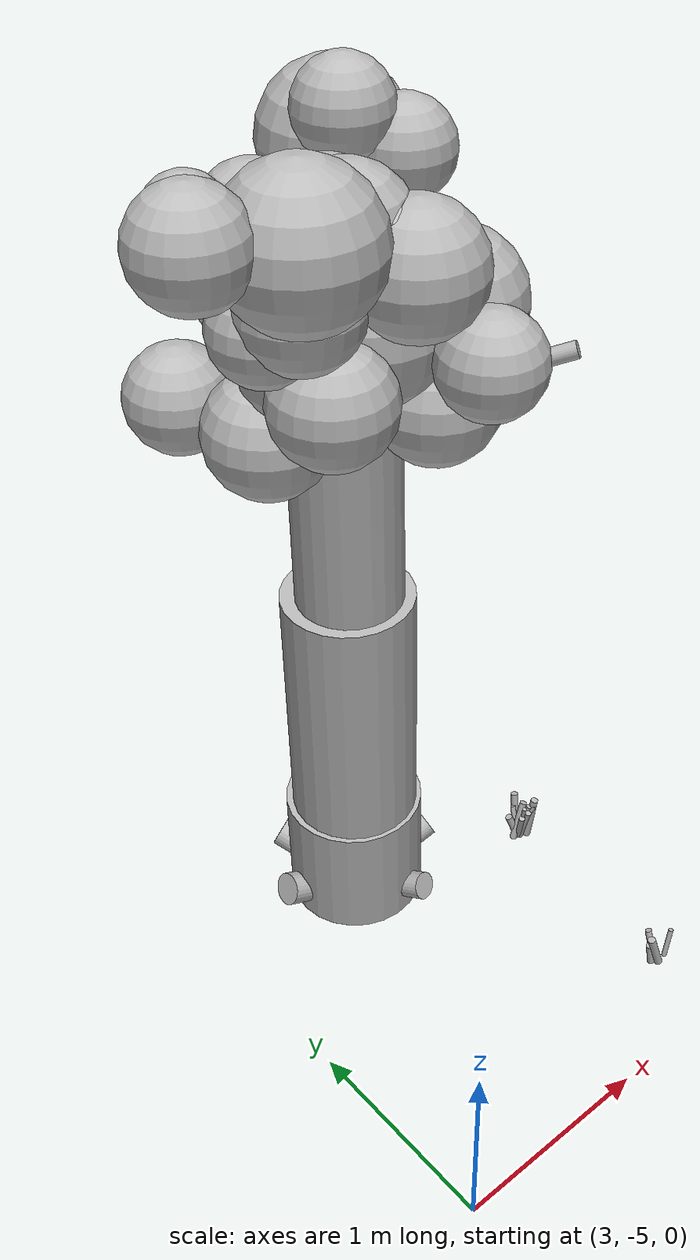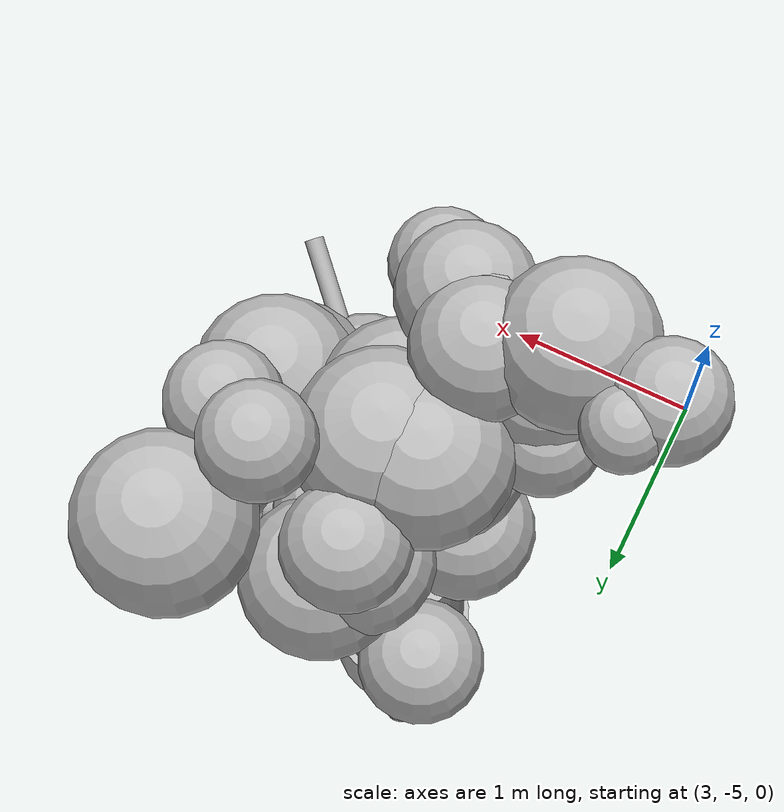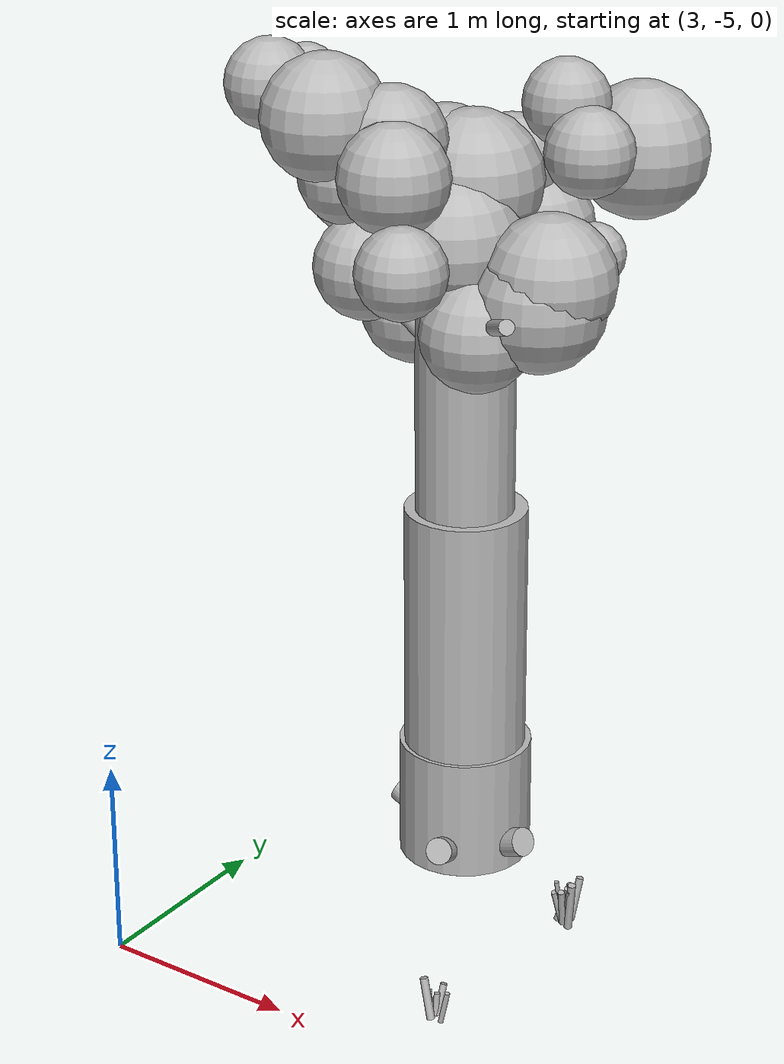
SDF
<sdf version="1.6">
 <world name="default">
  <model name="tree_11">
   <static>true</static>
   <pose>3.8430 -3.1770 0 0 0 0</pose>
   <link name="trunk">
    <pose>0 0 1.5000 0 0 0</pose>
    <collision name="trunk_c">
     <geometry><cylinder><radius>0.3500</radius><length>3.0000</length></cylinder></geometry>
    </collision>
   </link>
   <link name="trunk_v0">
    <pose>0.0001 -0.0012 0.3100 0 0 0</pose>
    <visual name="trunk_v0_v">
     <geometry><cylinder><radius>0.3448</radius><length>0.6448</length></cylinder></geometry>
     <material>
      <script>
       <uri>model://bushfire/materials/scripts</uri>
       <uri>model://bushfire/materials/textures</uri>
       <name>Bushfire/CharBark</name>
      </script>
     </material>
    </visual>
   </link>
   <link name="trunk_v1">
    <pose>0.0004 -0.0086 1.2700 0 0 0</pose>
    <visual name="trunk_v1_v">
     <geometry><cylinder><radius>0.3150</radius><length>1.3520</length></cylinder></geometry>
     <material>
      <script>
       <uri>model://bushfire/materials/scripts</uri>
       <uri>model://bushfire/materials/textures</uri>
       <name>Bushfire/BarkSmooth</name>
      </script>
     </material>
    </visual>
   </link>
   <link name="trunk_v2">
    <pose>0.0009 -0.0216 2.4600 0 0 0</pose>
    <visual name="trunk_v2_v">
     <geometry><cylinder><radius>0.2520</radius><length>1.1232</length></cylinder></geometry>
     <material>
      <script>
       <uri>model://bushfire/materials/scripts</uri>
       <uri>model://bushfire/materials/textures</uri>
       <name>Bushfire/BarkSmooth</name>
      </script>
     </material>
    </visual>
   </link>
   <link name="root0">
    <pose>-0.1117 0.2124 0.09 0 1.150 2.055</pose>
    <visual name="root0_v">
     <geometry><cylinder><radius>0.0827</radius><length>0.4200</length></cylinder></geometry>
     <material>
      <script>
       <uri>model://bushfire/materials/scripts</uri>
       <uri>model://bushfire/materials/textures</uri>
       <name>Bushfire/CharBark</name>
      </script>
     </material>
    </visual>
   </link>
   <link name="root1">
    <pose>0.0647 -0.2311 0.09 0 1.150 4.985</pose>
    <visual name="root1_v">
     <geometry><cylinder><radius>0.0698</radius><length>0.4200</length></cylinder></geometry>
     <material>
      <script>
       <uri>model://bushfire/materials/scripts</uri>
       <uri>model://bushfire/materials/textures</uri>
       <name>Bushfire/CharBark</name>
      </script>
     </material>
    </visual>
   </link>
   <link name="root2">
    <pose>-0.2392 0.0191 0.09 0 1.150 3.062</pose>
    <visual name="root2_v">
     <geometry><cylinder><radius>0.0822</radius><length>0.4200</length></cylinder></geometry>
     <material>
      <script>
       <uri>model://bushfire/materials/scripts</uri>
       <uri>model://bushfire/materials/textures</uri>
       <name>Bushfire/CharBark</name>
      </script>
     </material>
    </visual>
   </link>
   <link name="root3">
    <pose>0.2349 -0.0491 0.09 0 1.150 6.077</pose>
    <visual name="root3_v">
     <geometry><cylinder><radius>0.0753</radius><length>0.4200</length></cylinder></geometry>
     <material>
      <script>
       <uri>model://bushfire/materials/scripts</uri>
       <uri>model://bushfire/materials/textures</uri>
       <name>Bushfire/CharBark</name>
      </script>
     </material>
    </visual>
   </link>
   <link name="branch0">
    <pose>-0.2554 -0.1891 2.9891 0 0.7361 3.7789</pose>
    <visual name="branch0_v">
     <geometry><cylinder><radius>0.0538</radius><length>0.9465</length></cylinder></geometry>
     <material>
      <script>
       <uri>model://bushfire/materials/scripts</uri>
       <uri>model://bushfire/materials/textures</uri>
       <name>Bushfire/BarkSmooth</name>
      </script>
     </material>
    </visual>
   </link>
   <link name="branch1">
    <pose>0.1182 -0.1877 2.9284 0 0.8706 5.2743</pose>
    <visual name="branch1_v">
     <geometry><cylinder><radius>0.0473</radius><length>0.5801</length></cylinder></geometry>
     <material>
      <script>
       <uri>model://bushfire/materials/scripts</uri>
       <uri>model://bushfire/materials/textures</uri>
       <name>Bushfire/BarkSmooth</name>
      </script>
     </material>
    </visual>
   </link>
   <link name="branch2">
    <pose>0.1895 0.1944 2.9954 0 0.8840 7.0814</pose>
    <visual name="branch2_v">
     <geometry><cylinder><radius>0.0390</radius><length>0.7021</length></cylinder></geometry>
     <material>
      <script>
       <uri>model://bushfire/materials/scripts</uri>
       <uri>model://bushfire/materials/textures</uri>
       <name>Bushfire/BarkSmooth</name>
      </script>
     </material>
    </visual>
   </link>
   <link name="branch3">
    <pose>-0.1424 0.1721 2.6803 0 0.6922 8.5452</pose>
    <visual name="branch3_v">
     <geometry><cylinder><radius>0.0337</radius><length>0.6998</length></cylinder></geometry>
     <material>
      <script>
       <uri>model://bushfire/materials/scripts</uri>
       <uri>model://bushfire/materials/textures</uri>
       <name>Bushfire/BarkSmooth</name>
      </script>
     </material>
    </visual>
   </link>
   <link name="spar">
    <pose>0.2925 -0.3014 3.0500 0 1.2208 5.4828</pose>
    <visual name="spar_v">
     <geometry><cylinder><radius>0.0380</radius><length>1.1500</length></cylinder></geometry>
     <material>
      <script>
       <uri>model://bushfire/materials/scripts</uri>
       <uri>model://bushfire/materials/textures</uri>
       <name>Bushfire/CharBark</name>
      </script>
     </material>
    </visual>
   </link>
   <link name="foliage0">
    <pose>-0.5075 -0.4650 3.9832 0 0 0</pose>
    <visual name="foliage0_v">
     <geometry><sphere><radius>0.3141</radius></sphere></geometry>
     <material>
      <script>
       <uri>model://bushfire/materials/scripts</uri>
       <uri>model://bushfire/materials/textures</uri>
       <name>Bushfire/Foliage1</name>
      </script>
     </material>
    </visual>
   </link>
   <link name="foliage1">
    <pose>-0.2180 -0.0755 3.2840 0 0 0</pose>
    <visual name="foliage1_v">
     <geometry><sphere><radius>0.2868</radius></sphere></geometry>
     <material>
      <script>
       <uri>model://bushfire/materials/scripts</uri>
       <uri>model://bushfire/materials/textures</uri>
       <name>Bushfire/Foliage1</name>
      </script>
     </material>
    </visual>
   </link>
   <link name="foliage2">
    <pose>0.3328 0.3350 4.0091 0 0 0</pose>
    <visual name="foliage2_v">
     <geometry><sphere><radius>0.2172</radius></sphere></geometry>
     <material>
      <script>
       <uri>model://bushfire/materials/scripts</uri>
       <uri>model://bushfire/materials/textures</uri>
       <name>Bushfire/Foliage0</name>
      </script>
     </material>
    </visual>
   </link>
   <link name="foliage3">
    <pose>-0.1637 0.0421 3.6451 0 0 0</pose>
    <visual name="foliage3_v">
     <geometry><sphere><radius>0.3402</radius></sphere></geometry>
     <material>
      <script>
       <uri>model://bushfire/materials/scripts</uri>
       <uri>model://bushfire/materials/textures</uri>
       <name>Bushfire/Foliage1</name>
      </script>
     </material>
    </visual>
   </link>
   <link name="foliage4">
    <pose>-0.1047 -0.5108 3.8567 0 0 0</pose>
    <visual name="foliage4_v">
     <geometry><sphere><radius>0.1929</radius></sphere></geometry>
     <material>
      <script>
       <uri>model://bushfire/materials/scripts</uri>
       <uri>model://bushfire/materials/textures</uri>
       <name>Bushfire/Foliage0</name>
      </script>
     </material>
    </visual>
   </link>
   <link name="foliage5">
    <pose>0.4962 -0.1368 3.1615 0 0 0</pose>
    <visual name="foliage5_v">
     <geometry><sphere><radius>0.3337</radius></sphere></geometry>
     <material>
      <script>
       <uri>model://bushfire/materials/scripts</uri>
       <uri>model://bushfire/materials/textures</uri>
       <name>Bushfire/Foliage0</name>
      </script>
     </material>
    </visual>
   </link>
   <link name="foliage6">
    <pose>0.5429 0.2101 3.8267 0 0 0</pose>
    <visual name="foliage6_v">
     <geometry><sphere><radius>0.2210</radius></sphere></geometry>
     <material>
      <script>
       <uri>model://bushfire/materials/scripts</uri>
       <uri>model://bushfire/materials/textures</uri>
       <name>Bushfire/Foliage0</name>
      </script>
     </material>
    </visual>
   </link>
   <link name="foliage7">
    <pose>-0.4055 0.5817 2.8723 0 0 0</pose>
    <visual name="foliage7_v">
     <geometry><sphere><radius>0.2473</radius></sphere></geometry>
     <material>
      <script>
       <uri>model://bushfire/materials/scripts</uri>
       <uri>model://bushfire/materials/textures</uri>
       <name>Bushfire/Foliage1</name>
      </script>
     </material>
    </visual>
   </link>
   <link name="foliage8">
    <pose>-0.7915 -0.2249 4.0914 0 0 0</pose>
    <visual name="foliage8_v">
     <geometry><sphere><radius>0.1590</radius></sphere></geometry>
     <material>
      <script>
       <uri>model://bushfire/materials/scripts</uri>
       <uri>model://bushfire/materials/textures</uri>
       <name>Bushfire/Foliage2</name>
      </script>
     </material>
    </visual>
   </link>
   <link name="foliage9">
    <pose>-0.0546 -0.5465 3.7827 0 0 0</pose>
    <visual name="foliage9_v">
     <geometry><sphere><radius>0.2715</radius></sphere></geometry>
     <material>
      <script>
       <uri>model://bushfire/materials/scripts</uri>
       <uri>model://bushfire/materials/textures</uri>
       <name>Bushfire/Foliage1</name>
      </script>
     </material>
    </visual>
   </link>
   <link name="foliage10">
    <pose>0.5668 0.0313 3.1001 0 0 0</pose>
    <visual name="foliage10_v">
     <geometry><sphere><radius>0.1673</radius></sphere></geometry>
     <material>
      <script>
       <uri>model://bushfire/materials/scripts</uri>
       <uri>model://bushfire/materials/textures</uri>
       <name>Bushfire/Foliage2</name>
      </script>
     </material>
    </visual>
   </link>
   <link name="foliage11">
    <pose>-0.2077 -0.0150 3.5290 0 0 0</pose>
    <visual name="foliage11_v">
     <geometry><sphere><radius>0.1781</radius></sphere></geometry>
     <material>
      <script>
       <uri>model://bushfire/materials/scripts</uri>
       <uri>model://bushfire/materials/textures</uri>
       <name>Bushfire/Foliage0</name>
      </script>
     </material>
    </visual>
   </link>
   <link name="foliage12">
    <pose>-0.5174 -0.2351 3.5815 0 0 0</pose>
    <visual name="foliage12_v">
     <geometry><sphere><radius>0.2212</radius></sphere></geometry>
     <material>
      <script>
       <uri>model://bushfire/materials/scripts</uri>
       <uri>model://bushfire/materials/textures</uri>
       <name>Bushfire/Foliage0</name>
      </script>
     </material>
    </visual>
   </link>
   <link name="foliage13">
    <pose>0.1291 -0.7512 3.4168 0 0 0</pose>
    <visual name="foliage13_v">
     <geometry><sphere><radius>0.2229</radius></sphere></geometry>
     <material>
      <script>
       <uri>model://bushfire/materials/scripts</uri>
       <uri>model://bushfire/materials/textures</uri>
       <name>Bushfire/Foliage0</name>
      </script>
     </material>
    </visual>
   </link>
   <link name="foliage14">
    <pose>-0.0501 0.4539 3.6204 0 0 0</pose>
    <visual name="foliage14_v">
     <geometry><sphere><radius>0.2452</radius></sphere></geometry>
     <material>
      <script>
       <uri>model://bushfire/materials/scripts</uri>
       <uri>model://bushfire/materials/textures</uri>
       <name>Bushfire/Foliage1</name>
      </script>
     </material>
    </visual>
   </link>
   <link name="foliage15">
    <pose>0.0312 0.5282 3.2805 0 0 0</pose>
    <visual name="foliage15_v">
     <geometry><sphere><radius>0.3152</radius></sphere></geometry>
     <material>
      <script>
       <uri>model://bushfire/materials/scripts</uri>
       <uri>model://bushfire/materials/textures</uri>
       <name>Bushfire/Foliage2</name>
      </script>
     </material>
    </visual>
   </link>
   <link name="foliage16">
    <pose>-0.4474 -0.3623 3.6966 0 0 0</pose>
    <visual name="foliage16_v">
     <geometry><sphere><radius>0.2526</radius></sphere></geometry>
     <material>
      <script>
       <uri>model://bushfire/materials/scripts</uri>
       <uri>model://bushfire/materials/textures</uri>
       <name>Bushfire/Foliage2</name>
      </script>
     </material>
    </visual>
   </link>
   <link name="foliage17">
    <pose>0.5332 -0.1033 3.2775 0 0 0</pose>
    <visual name="foliage17_v">
     <geometry><sphere><radius>0.3249</radius></sphere></geometry>
     <material>
      <script>
       <uri>model://bushfire/materials/scripts</uri>
       <uri>model://bushfire/materials/textures</uri>
       <name>Bushfire/Foliage1</name>
      </script>
     </material>
    </visual>
   </link>
   <link name="foliage18">
    <pose>-0.0948 0.4309 3.3806 0 0 0</pose>
    <visual name="foliage18_v">
     <geometry><sphere><radius>0.2772</radius></sphere></geometry>
     <material>
      <script>
       <uri>model://bushfire/materials/scripts</uri>
       <uri>model://bushfire/materials/textures</uri>
       <name>Bushfire/Foliage0</name>
      </script>
     </material>
    </visual>
   </link>
   <link name="foliage19">
    <pose>0.1034 0.2613 3.2032 0 0 0</pose>
    <visual name="foliage19_v">
     <geometry><sphere><radius>0.2438</radius></sphere></geometry>
     <material>
      <script>
       <uri>model://bushfire/materials/scripts</uri>
       <uri>model://bushfire/materials/textures</uri>
       <name>Bushfire/Foliage1</name>
      </script>
     </material>
    </visual>
   </link>
   <link name="foliage20">
    <pose>-0.2085 -0.3409 3.8937 0 0 0</pose>
    <visual name="foliage20_v">
     <geometry><sphere><radius>0.2687</radius></sphere></geometry>
     <material>
      <script>
       <uri>model://bushfire/materials/scripts</uri>
       <uri>model://bushfire/materials/textures</uri>
       <name>Bushfire/Foliage0</name>
      </script>
     </material>
    </visual>
   </link>
   <link name="foliage21">
    <pose>-0.0785 0.1716 3.5210 0 0 0</pose>
    <visual name="foliage21_v">
     <geometry><sphere><radius>0.2609</radius></sphere></geometry>
     <material>
      <script>
       <uri>model://bushfire/materials/scripts</uri>
       <uri>model://bushfire/materials/textures</uri>
       <name>Bushfire/Foliage1</name>
      </script>
     </material>
    </visual>
   </link>
   <link name="foliage22">
    <pose>-0.0046 0.0448 3.6417 0 0 0</pose>
    <visual name="foliage22_v">
     <geometry><sphere><radius>0.3482</radius></sphere></geometry>
     <material>
      <script>
       <uri>model://bushfire/materials/scripts</uri>
       <uri>model://bushfire/materials/textures</uri>
       <name>Bushfire/Foliage0</name>
      </script>
     </material>
    </visual>
   </link>
   <link name="foliage23">
    <pose>-0.3371 0.0432 2.9269 0 0 0</pose>
    <visual name="foliage23_v">
     <geometry><sphere><radius>0.2813</radius></sphere></geometry>
     <material>
      <script>
       <uri>model://bushfire/materials/scripts</uri>
       <uri>model://bushfire/materials/textures</uri>
       <name>Bushfire/Foliage2</name>
      </script>
     </material>
    </visual>
   </link>
   <link name="foliage24">
    <pose>-0.3327 -0.3834 3.2591 0 0 0</pose>
    <visual name="foliage24_v">
     <geometry><sphere><radius>0.2616</radius></sphere></geometry>
     <material>
      <script>
       <uri>model://bushfire/materials/scripts</uri>
       <uri>model://bushfire/materials/textures</uri>
       <name>Bushfire/Foliage2</name>
      </script>
     </material>
    </visual>
   </link>
   <link name="foliage25">
    <pose>0.0891 0.0918 3.2051 0 0 0</pose>
    <visual name="foliage25_v">
     <geometry><sphere><radius>0.2886</radius></sphere></geometry>
     <material>
      <script>
       <uri>model://bushfire/materials/scripts</uri>
       <uri>model://bushfire/materials/textures</uri>
       <name>Bushfire/Foliage1</name>
      </script>
     </material>
    </visual>
   </link>
   <link name="foliage26">
    <pose>0.5498 0.6791 3.7295 0 0 0</pose>
    <visual name="foliage26_v">
     <geometry><sphere><radius>0.3411</radius></sphere></geometry>
     <material>
      <script>
       <uri>model://bushfire/materials/scripts</uri>
       <uri>model://bushfire/materials/textures</uri>
       <name>Bushfire/Foliage0</name>
      </script>
     </material>
    </visual>
   </link>
   <link name="foliage27">
    <pose>-0.0417 -0.0151 3.6172 0 0 0</pose>
    <visual name="foliage27_v">
     <geometry><sphere><radius>0.1612</radius></sphere></geometry>
     <material>
      <script>
       <uri>model://bushfire/materials/scripts</uri>
       <uri>model://bushfire/materials/textures</uri>
       <name>Bushfire/Foliage1</name>
      </script>
     </material>
    </visual>
   </link>
   <link name="foliage28">
    <pose>0.0188 -0.1673 3.3949 0 0 0</pose>
    <visual name="foliage28_v">
     <geometry><sphere><radius>0.3527</radius></sphere></geometry>
     <material>
      <script>
       <uri>model://bushfire/materials/scripts</uri>
       <uri>model://bushfire/materials/textures</uri>
       <name>Bushfire/Foliage0</name>
      </script>
     </material>
    </visual>
   </link>
   <link name="foliage29">
    <pose>0.3956 -0.2106 3.0116 0 0 0</pose>
    <visual name="foliage29_v">
     <geometry><sphere><radius>0.1579</radius></sphere></geometry>
     <material>
      <script>
       <uri>model://bushfire/materials/scripts</uri>
       <uri>model://bushfire/materials/textures</uri>
       <name>Bushfire/Foliage2</name>
      </script>
     </material>
    </visual>
   </link>
   <link name="foliage30">
    <pose>-0.0313 -0.1437 3.5800 0 0 0</pose>
    <visual name="foliage30_v">
     <geometry><sphere><radius>0.1804</radius></sphere></geometry>
     <material>
      <script>
       <uri>model://bushfire/materials/scripts</uri>
       <uri>model://bushfire/materials/textures</uri>
       <name>Bushfire/Foliage1</name>
      </script>
     </material>
    </visual>
   </link>
   <link name="foliage31">
    <pose>-0.0178 0.5158 2.9317 0 0 0</pose>
    <visual name="foliage31_v">
     <geometry><sphere><radius>0.2135</radius></sphere></geometry>
     <material>
      <script>
       <uri>model://bushfire/materials/scripts</uri>
       <uri>model://bushfire/materials/textures</uri>
       <name>Bushfire/Foliage0</name>
      </script>
     </material>
    </visual>
   </link>
   <link name="foliage32">
    <pose>-0.8885 -0.3851 4.0729 0 0 0</pose>
    <visual name="foliage32_v">
     <geometry><sphere><radius>0.2269</radius></sphere></geometry>
     <material>
      <script>
       <uri>model://bushfire/materials/scripts</uri>
       <uri>model://bushfire/materials/textures</uri>
       <name>Bushfire/Foliage1</name>
      </script>
     </material>
    </visual>
   </link>
   <link name="foliage33">
    <pose>0.2575 -0.3068 3.0126 0 0 0</pose>
    <visual name="foliage33_v">
     <geometry><sphere><radius>0.2846</radius></sphere></geometry>
     <material>
      <script>
       <uri>model://bushfire/materials/scripts</uri>
       <uri>model://bushfire/materials/textures</uri>
       <name>Bushfire/Foliage2</name>
      </script>
     </material>
    </visual>
   </link>
   <link name="foliage34">
    <pose>0.5003 0.3406 3.2756 0 0 0</pose>
    <visual name="foliage34_v">
     <geometry><sphere><radius>0.1597</radius></sphere></geometry>
     <material>
      <script>
       <uri>model://bushfire/materials/scripts</uri>
       <uri>model://bushfire/materials/textures</uri>
       <name>Bushfire/Foliage0</name>
      </script>
     </material>
    </visual>
   </link>
  </model>
  <model name="tussocks">
   <static>true</static>
   <link name="tuft102_0">
    <pose>4.6931 -3.5453 0.1078 0 0.3034 0.0782</pose>
    <visual name="tuft102_0_v">
     <geometry><cylinder><radius>0.0186</radius><length>0.2343</length></cylinder></geometry>
     <material>
      <script>
       <uri>model://bushfire/materials/scripts</uri>
       <uri>model://bushfire/materials/textures</uri>
       <name>Bushfire/Tussock</name>
      </script>
     </material>
    </visual>
   </link>
   <link name="tuft102_1">
    <pose>4.6700 -3.5282 0.0673 0 0.3357 2.4749</pose>
    <visual name="tuft102_1_v">
     <geometry><cylinder><radius>0.0191</radius><length>0.1464</length></cylinder></geometry>
     <material>
      <script>
       <uri>model://bushfire/materials/scripts</uri>
       <uri>model://bushfire/materials/textures</uri>
       <name>Bushfire/Tussock</name>
      </script>
     </material>
    </visual>
   </link>
   <link name="tuft102_2">
    <pose>4.6847 -3.5763 0.1201 0 0.1860 4.4874</pose>
    <visual name="tuft102_2_v">
     <geometry><cylinder><radius>0.0111</radius><length>0.2611</length></cylinder></geometry>
     <material>
      <script>
       <uri>model://bushfire/materials/scripts</uri>
       <uri>model://bushfire/materials/textures</uri>
       <name>Bushfire/Tussock</name>
      </script>
     </material>
    </visual>
   </link>
   <link name="tuft102_3">
    <pose>4.7022 -3.5789 0.0954 0 0.2083 5.0136</pose>
    <visual name="tuft102_3_v">
     <geometry><cylinder><radius>0.0176</radius><length>0.2073</length></cylinder></geometry>
     <material>
      <script>
       <uri>model://bushfire/materials/scripts</uri>
       <uri>model://bushfire/materials/textures</uri>
       <name>Bushfire/Tussock</name>
      </script>
     </material>
    </visual>
   </link>
   <link name="tuft102_4">
    <pose>4.7495 -3.5814 0.1208 0 0.1221 5.7249</pose>
    <visual name="tuft102_4_v">
     <geometry><cylinder><radius>0.0199</radius><length>0.2627</length></cylinder></geometry>
     <material>
      <script>
       <uri>model://bushfire/materials/scripts</uri>
       <uri>model://bushfire/materials/textures</uri>
       <name>Bushfire/Foliage2</name>
      </script>
     </material>
    </visual>
   </link>
   <link name="tuft102_5">
    <pose>4.7206 -3.5703 0.1086 0 0.4042 5.5714</pose>
    <visual name="tuft102_5_v">
     <geometry><cylinder><radius>0.0116</radius><length>0.2361</length></cylinder></geometry>
     <material>
      <script>
       <uri>model://bushfire/materials/scripts</uri>
       <uri>model://bushfire/materials/textures</uri>
       <name>Bushfire/Tussock</name>
      </script>
     </material>
    </visual>
   </link>
   <link name="tuft102_6">
    <pose>4.7237 -3.4863 0.1086 0 0.2123 1.0757</pose>
    <visual name="tuft102_6_v">
     <geometry><cylinder><radius>0.0187</radius><length>0.2361</length></cylinder></geometry>
     <material>
      <script>
       <uri>model://bushfire/materials/scripts</uri>
       <uri>model://bushfire/materials/textures</uri>
       <name>Bushfire/Foliage2</name>
      </script>
     </material>
    </visual>
   </link>
   <link name="tuft102_7">
    <pose>4.6764 -3.5765 0.0888 0 0.2533 4.2515</pose>
    <visual name="tuft102_7_v">
     <geometry><cylinder><radius>0.0156</radius><length>0.1930</length></cylinder></geometry>
     <material>
      <script>
       <uri>model://bushfire/materials/scripts</uri>
       <uri>model://bushfire/materials/textures</uri>
       <name>Bushfire/Tussock</name>
      </script>
     </material>
    </visual>
   </link>
   <link name="tuft102_8">
    <pose>4.7040 -3.5059 0.0780 0 0.3106 1.2703</pose>
    <visual name="tuft102_8_v">
     <geometry><cylinder><radius>0.0136</radius><length>0.1695</length></cylinder></geometry>
     <material>
      <script>
       <uri>model://bushfire/materials/scripts</uri>
       <uri>model://bushfire/materials/textures</uri>
       <name>Bushfire/Foliage2</name>
      </script>
     </material>
    </visual>
   </link>
   <link name="tuft102_9">
    <pose>4.7043 -3.5564 0.1069 0 0.3275 5.5581</pose>
    <visual name="tuft102_9_v">
     <geometry><cylinder><radius>0.0150</radius><length>0.2323</length></cylinder></geometry>
     <material>
      <script>
       <uri>model://bushfire/materials/scripts</uri>
       <uri>model://bushfire/materials/textures</uri>
       <name>Bushfire/Foliage2</name>
      </script>
     </material>
    </visual>
   </link>
   <link name="tuft127_0">
    <pose>4.6370 -4.5671 0.0721 0 0.3404 1.5176</pose>
    <visual name="tuft127_0_v">
     <geometry><cylinder><radius>0.0164</radius><length>0.1568</length></cylinder></geometry>
     <material>
      <script>
       <uri>model://bushfire/materials/scripts</uri>
       <uri>model://bushfire/materials/textures</uri>
       <name>Bushfire/Tussock</name>
      </script>
     </material>
    </visual>
   </link>
   <link name="tuft127_2">
    <pose>4.5946 -4.6048 0.0583 0 0.1468 2.4276</pose>
    <visual name="tuft127_2_v">
     <geometry><cylinder><radius>0.0175</radius><length>0.1267</length></cylinder></geometry>
     <material>
      <script>
       <uri>model://bushfire/materials/scripts</uri>
       <uri>model://bushfire/materials/textures</uri>
       <name>Bushfire/Tussock</name>
      </script>
     </material>
    </visual>
   </link>
   <link name="tuft127_5">
    <pose>4.6975 -4.6264 0.0794 0 0.2028 0.1824</pose>
    <visual name="tuft127_5_v">
     <geometry><cylinder><radius>0.0126</radius><length>0.1727</length></cylinder></geometry>
     <material>
      <script>
       <uri>model://bushfire/materials/scripts</uri>
       <uri>model://bushfire/materials/textures</uri>
       <name>Bushfire/Foliage2</name>
      </script>
     </material>
    </visual>
   </link>
   <link name="tuft127_6">
    <pose>4.6293 -4.5919 0.0540 0 0.1177 1.6549</pose>
    <visual name="tuft127_6_v">
     <geometry><cylinder><radius>0.0148</radius><length>0.1174</length></cylinder></geometry>
     <material>
      <script>
       <uri>model://bushfire/materials/scripts</uri>
       <uri>model://bushfire/materials/textures</uri>
       <name>Bushfire/Foliage2</name>
      </script>
     </material>
    </visual>
   </link>
   <link name="tuft127_9">
    <pose>4.6011 -4.6259 0.0952 0 0.2900 2.7731</pose>
    <visual name="tuft127_9_v">
     <geometry><cylinder><radius>0.0197</radius><length>0.2070</length></cylinder></geometry>
     <material>
      <script>
       <uri>model://bushfire/materials/scripts</uri>
       <uri>model://bushfire/materials/textures</uri>
       <name>Bushfire/Foliage2</name>
      </script>
     </material>
    </visual>
   </link>
  </model>
 </world>
</sdf>
